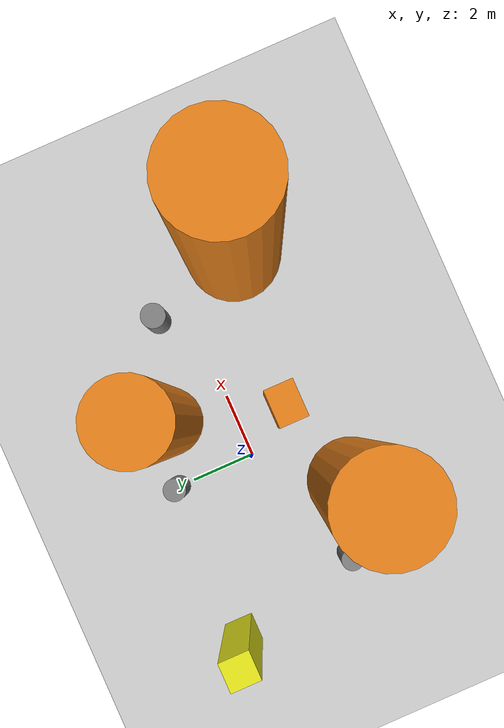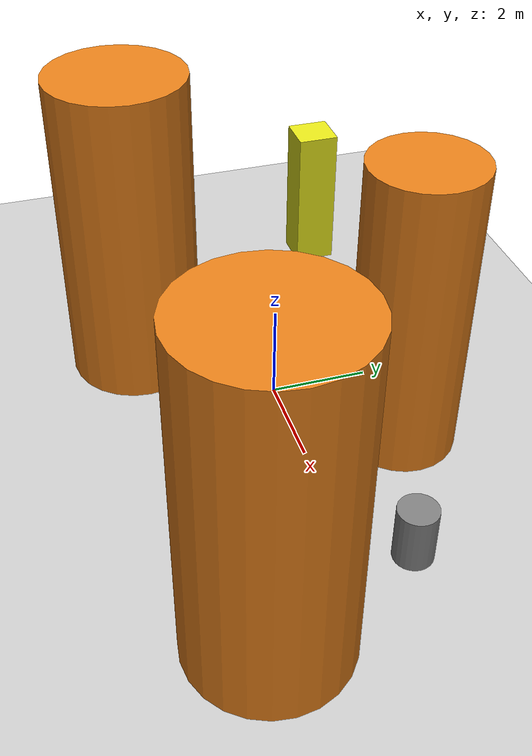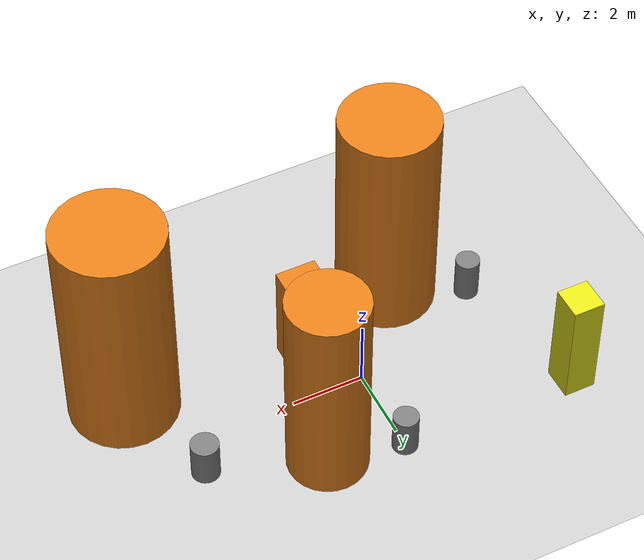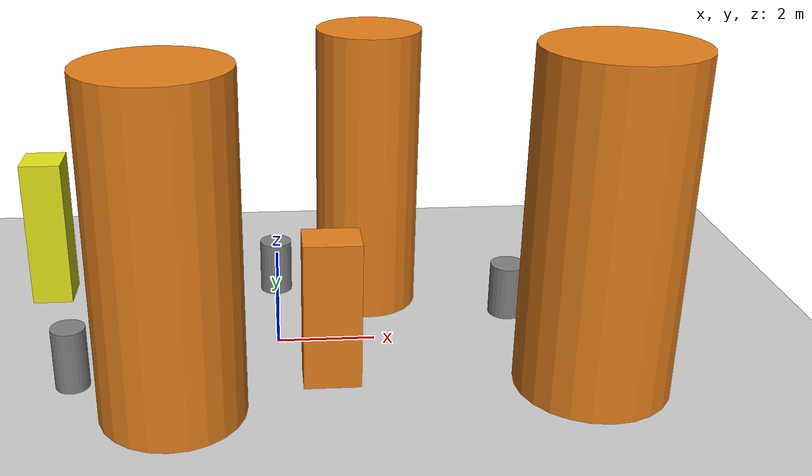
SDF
<?xml version='1.0'?>
<sdf version='1.6'>
  <world name='routeA_rl_v1__support_expansion__rl_test__mixed_3d_low_density_route__000174'>
    <!-- Sun light -->
    <light name='sun' type='directional'>
      <cast_shadows>1</cast_shadows>
      <pose>0 0 10 0 0 0</pose>
      <diffuse>0.8 0.8 0.8 1</diffuse>
      <specular>0.2 0.2 0.2 1</specular>
      <attenuation>
        <range>1000</range>
        <constant>0.9</constant>
        <linear>0.01</linear>
        <quadratic>0.001</quadratic>
      </attenuation>
      <direction>-0.5 0.1 -0.9</direction>
    </light>

    <!-- Ground plane -->
    <model name='ground_plane'>
      <static>1</static>
      <link name='link'>
        <collision name='collision'>
          <geometry>
            <plane>
              <normal>0 0 1</normal>
              <size>100 100</size>
            </plane>
          </geometry>
          <surface>
            <contact>
              <collide_bitmask>65535</collide_bitmask>
              <ode/>
            </contact>
            <friction>
              <ode>
                <mu>100</mu>
                <mu2>50</mu2>
              </ode>
              <torsional><ode/></torsional>
            </friction>
            <bounce/>
          </surface>
          <max_contacts>10</max_contacts>
        </collision>
        <visual name='visual'>
          <cast_shadows>0</cast_shadows>
          <geometry>
            <plane>
              <normal>0 0 1</normal>
              <size>100 100</size>
            </plane>
          </geometry>
          <material>
            <script>
              <uri>file://media/materials/scripts/gazebo.material</uri>
              <n>Gazebo/Grey</n>
            </script>
          </material>
        </visual>
      </link>
    </model>

    <!-- Environment -->
    <magnetic_field>6e-06 2.3e-05 -4.2e-05</magnetic_field>
    <atmosphere type='adiabatic'/>
    <physics name='default_physics' default='0' type='ode'>
      <gravity>0 0 -9.8</gravity>
      <max_step_size>0.004</max_step_size>
      <real_time_factor>1</real_time_factor>
      <real_time_update_rate>250</real_time_update_rate>
    </physics>
    <scene>
      <ambient>0.4 0.4 0.4 1</ambient>
      <background>0.7 0.7 0.7 1</background>
      <shadows>1</shadows>
    </scene>
    <wind/>
    <spherical_coordinates>
      <surface_model>EARTH_WGS84</surface_model>
      <latitude_deg>0</latitude_deg>
      <longitude_deg>0</longitude_deg>
      <elevation>0</elevation>
      <heading_deg>0</heading_deg>
    </spherical_coordinates>

    <!-- ============ OBSTACLES (8) ============ -->
    <model name='low_obs_0'>
      <static>1</static>
      <link name='link'>
        <visual name='visual'>
          <geometry>
            <cylinder>
              <radius>0.3332</radius>
              <length>1.2568</length>
            </cylinder>
          </geometry>
          <material>
            <script>
              <n>Gazebo/Grey</n>
              <uri>file://media/materials/scripts/gazebo.material</uri>
            </script>
            <ambient>0.5 0.5 0.5 1</ambient>
          </material>
        </visual>
        <collision name='collision'>
          <geometry>
            <cylinder>
              <radius>0.3332</radius>
              <length>1.2568</length>
            </cylinder>
          </geometry>
          <max_contacts>10</max_contacts>
          <surface>
            <contact><ode/></contact>
            <bounce/>
            <friction>
              <ode><mu>1</mu><mu2>1</mu2></ode>
              <torsional><ode/></torsional>
            </friction>
          </surface>
        </collision>
      </link>
      <pose>-4.0000 -1.5000 0.6284 0 0 0.0000</pose>
    </model>

    <model name='low_obs_1'>
      <static>1</static>
      <link name='link'>
        <visual name='visual'>
          <geometry>
            <cylinder>
              <radius>0.3479</radius>
              <length>1.1687</length>
            </cylinder>
          </geometry>
          <material>
            <script>
              <n>Gazebo/Grey</n>
              <uri>file://media/materials/scripts/gazebo.material</uri>
            </script>
            <ambient>0.5 0.5 0.5 1</ambient>
          </material>
        </visual>
        <collision name='collision'>
          <geometry>
            <cylinder>
              <radius>0.3479</radius>
              <length>1.1687</length>
            </cylinder>
          </geometry>
          <max_contacts>10</max_contacts>
          <surface>
            <contact><ode/></contact>
            <bounce/>
            <friction>
              <ode><mu>1</mu><mu2>1</mu2></ode>
              <torsional><ode/></torsional>
            </friction>
          </surface>
        </collision>
      </link>
      <pose>0.0000 2.5000 0.5844 0 0 0.0000</pose>
    </model>

    <model name='low_obs_2'>
      <static>1</static>
      <link name='link'>
        <visual name='visual'>
          <geometry>
            <cylinder>
              <radius>0.3835</radius>
              <length>1.1503</length>
            </cylinder>
          </geometry>
          <material>
            <script>
              <n>Gazebo/Grey</n>
              <uri>file://media/materials/scripts/gazebo.material</uri>
            </script>
            <ambient>0.5 0.5 0.5 1</ambient>
          </material>
        </visual>
        <collision name='collision'>
          <geometry>
            <cylinder>
              <radius>0.3835</radius>
              <length>1.1503</length>
            </cylinder>
          </geometry>
          <max_contacts>10</max_contacts>
          <surface>
            <contact><ode/></contact>
            <bounce/>
            <friction>
              <ode><mu>1</mu><mu2>1</mu2></ode>
              <torsional><ode/></torsional>
            </friction>
          </surface>
        </collision>
      </link>
      <pose>5.0000 1.0000 0.5752 0 0 0.0000</pose>
    </model>

    <model name='tall_obs_0'>
      <static>1</static>
      <link name='link'>
        <visual name='visual'>
          <geometry>
            <cylinder>
              <radius>1.3773</radius>
              <length>6.5418</length>
            </cylinder>
          </geometry>
          <material>
            <script>
              <n>Gazebo/Orange</n>
              <uri>file://media/materials/scripts/gazebo.material</uri>
            </script>
            <ambient>0.9 0.5 0.1 1</ambient>
          </material>
        </visual>
        <collision name='collision'>
          <geometry>
            <cylinder>
              <radius>1.3773</radius>
              <length>6.5418</length>
            </cylinder>
          </geometry>
          <max_contacts>10</max_contacts>
          <surface>
            <contact><ode/></contact>
            <bounce/>
            <friction>
              <ode><mu>1</mu><mu2>1</mu2></ode>
              <torsional><ode/></torsional>
            </friction>
          </surface>
        </collision>
      </link>
      <pose>-2.0000 -2.5000 3.2709 0 0 0.0000</pose>
    </model>

    <model name='tall_obs_1'>
      <static>1</static>
      <link name='link'>
        <visual name='visual'>
          <geometry>
            <cylinder>
              <radius>1.0928</radius>
              <length>6.1106</length>
            </cylinder>
          </geometry>
          <material>
            <script>
              <n>Gazebo/Orange</n>
              <uri>file://media/materials/scripts/gazebo.material</uri>
            </script>
            <ambient>0.9 0.5 0.1 1</ambient>
          </material>
        </visual>
        <collision name='collision'>
          <geometry>
            <cylinder>
              <radius>1.0928</radius>
              <length>6.1106</length>
            </cylinder>
          </geometry>
          <max_contacts>10</max_contacts>
          <surface>
            <contact><ode/></contact>
            <bounce/>
            <friction>
              <ode><mu>1</mu><mu2>1</mu2></ode>
              <torsional><ode/></torsional>
            </friction>
          </surface>
        </collision>
      </link>
      <pose>2.0000 2.0000 3.0553 0 0 0.0000</pose>
    </model>

    <model name='tall_obs_2'>
      <static>1</static>
      <link name='link'>
        <visual name='visual'>
          <geometry>
            <cylinder>
              <radius>1.4966</radius>
              <length>6.6333</length>
            </cylinder>
          </geometry>
          <material>
            <script>
              <n>Gazebo/Orange</n>
              <uri>file://media/materials/scripts/gazebo.material</uri>
            </script>
            <ambient>0.9 0.5 0.1 1</ambient>
          </material>
        </visual>
        <collision name='collision'>
          <geometry>
            <cylinder>
              <radius>1.4966</radius>
              <length>6.6333</length>
            </cylinder>
          </geometry>
          <max_contacts>10</max_contacts>
          <surface>
            <contact><ode/></contact>
            <bounce/>
            <friction>
              <ode><mu>1</mu><mu2>1</mu2></ode>
              <torsional><ode/></torsional>
            </friction>
          </surface>
        </collision>
      </link>
      <pose>6.0000 -2.0000 3.3167 0 0 0.0000</pose>
    </model>

    <model name='med_obs_0'>
      <static>1</static>
      <link name='link'>
        <visual name='visual'>
          <geometry>
            <box>
              <size>0.8729 0.9025 3.2325</size>
            </box>
          </geometry>
          <material>
            <script>
              <n>Gazebo/Yellow</n>
              <uri>file://media/materials/scripts/gazebo.material</uri>
            </script>
            <ambient>0.9 0.9 0.1 1</ambient>
          </material>
        </visual>
        <collision name='collision'>
          <geometry>
            <box>
              <size>0.8729 0.9025 3.2325</size>
            </box>
          </geometry>
          <max_contacts>10</max_contacts>
          <surface>
            <contact><ode/></contact>
            <bounce/>
            <friction>
              <ode><mu>1</mu><mu2>1</mu2></ode>
              <torsional><ode/></torsional>
            </friction>
          </surface>
        </collision>
      </link>
      <pose>-5.0000 2.5000 1.6163 0 0 0.0000</pose>
    </model>

    <model name='med_obs_1'>
      <static>1</static>
      <link name='link'>
        <visual name='visual'>
          <geometry>
            <box>
              <size>1.1170 0.8621 2.9711</size>
            </box>
          </geometry>
          <material>
            <script>
              <n>Gazebo/Orange</n>
              <uri>file://media/materials/scripts/gazebo.material</uri>
            </script>
            <ambient>0.9 0.5 0.1 1</ambient>
          </material>
        </visual>
        <collision name='collision'>
          <geometry>
            <box>
              <size>1.1170 0.8621 2.9711</size>
            </box>
          </geometry>
          <max_contacts>10</max_contacts>
          <surface>
            <contact><ode/></contact>
            <bounce/>
            <friction>
              <ode><mu>1</mu><mu2>1</mu2></ode>
              <torsional><ode/></torsional>
            </friction>
          </surface>
        </collision>
      </link>
      <pose>1.0000 -1.5000 1.4856 0 0 0.0000</pose>
    </model>

    <!-- GUI camera -->
    <gui fullscreen='0'>
      <camera name='user_camera'>
        <pose>-15 0 18 0 0.85 0.15</pose>
        <view_controller>orbit</view_controller>
        <projection_type>perspective</projection_type>
      </camera>
    </gui>
  </world>
</sdf>
